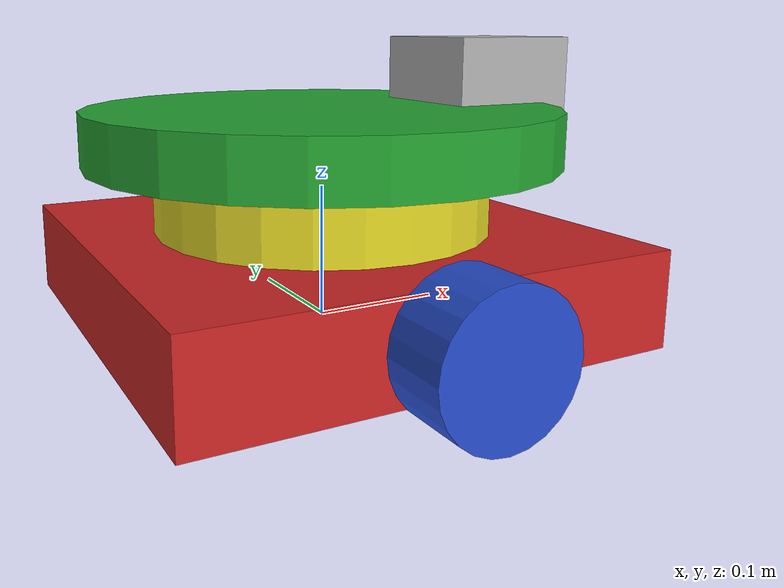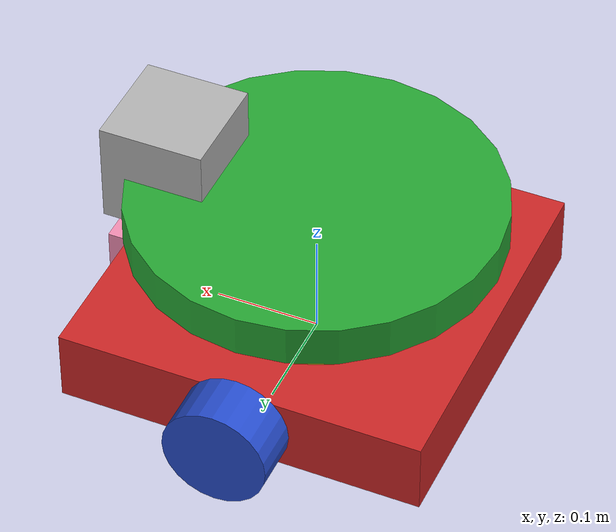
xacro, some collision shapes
<?xml version='1.0'?>

<robot name="my_robot" xmlns:xacro="http://www.ros.org/wiki/xacro">
<xacro:include filename="$(find my_robot)/urdf/my_robotGoChaseIt.gazebo" />

  <!-- Robot footprint -->

  <link name="robot_footprint"></link>

  <joint name="robot_footprint_joint" type="fixed">
    <origin xyz="0 0 0" rpy="0 0 0" />
    <parent link="robot_footprint"/>
    <child link="chassis" />
  </joint>

  <!-- Chassis -->

  <link name='chassis'>
    <pose>0 0 0.1 0 0 0</pose>

    <inertial>
      <mass value="15.0"/>
      <origin xyz="0.0 0.035 0" rpy=" 0 0 0"/>
      <inertia
          ixx="0.1" ixy="0" ixz="0"
          iyy="0.1" iyz="0"
          izz="0.1"
      />
    </inertial>

    <collision name='chassis_collision'>
      <origin xyz="0 0 0.035" rpy=" 0 0 0"/>
      <geometry>
        <box size=".35 .35 .07"/>
      </geometry>
    </collision>

    <visual name='chassis_visual'>
      <origin xyz="0 0 0.035" rpy=" 0 0 0"/>
      <geometry>
        <box size=".35 .35 .07"/>
      </geometry>
    </visual>

    <collision name='back_caster_collision'>
      <origin xyz="-0.125 0 0.0" rpy=" 0 0 0"/>
      <geometry>
        <sphere radius="0.015"/>
      </geometry>
    </collision>

    <visual name='back_caster_visual'>
      <origin xyz="-0.125 0 0.0" rpy=" 0 0 0"/>
      <geometry>
        <sphere radius="0.015"/>
      </geometry>
    </visual>

    <collision name='front_caster_collision'>
      <origin xyz="0.125 0 0.0" rpy=" 0 0 0"/>
      <geometry>
        <sphere radius="0.015"/>
      </geometry>
    </collision>

    <visual name='front_caster_visual'>
      <origin xyz="0.125 0 0.0" rpy=" 0 0 0"/>
      <geometry>
        <sphere radius="0.015"/>
      </geometry>
    </visual>

  </link>

  <!-- Column -->

  <link name='column'>
    <pose>0 0 0.1 0 0 0</pose>

    <inertial>
      <mass value="5.0"/>
      <origin xyz="0.0 0 0.095" rpy=" 0 0 0"/>
      <inertia
          ixx="0.1" ixy="0" ixz="0"
          iyy="0.1" iyz="0"
          izz="0.1"
      />
    </inertial>

    <collision name='column_collision'>
      <origin xyz="0 0 0.095" rpy=" 0 0 0"/>
      <geometry>
        <cylinder radius="0.125" length="0.05"/>
      </geometry>
    </collision>

    <visual name='column_visual'>
      <origin xyz="0 0 0.095" rpy=" 0 0 0"/>
      <geometry>
        <cylinder radius="0.125" length="0.05"/>
      </geometry>
    </visual>

  </link>

  <joint type="fixed" name="column_chasis_fixed">
    <origin xyz="0 0 0" rpy="0 0 0"/>
    <child link="column"/>
    <parent link="chassis"/>
  </joint>

  <!-- ServeTable -->

  <link name='servetable'>
    <pose>0 0 0.1 0 0 0</pose>

    <inertial>
      <mass value="5.0"/>
      <origin xyz="0.0 0 0.14" rpy=" 0 0 0"/>
      <inertia
          ixx="0.1" ixy="0" ixz="0"
          iyy="0.1" iyz="0"
          izz="0.1"
      />
    </inertial>

    <collision name='servetable_collision'>
      <origin xyz="0 0 0.14" rpy=" 0 0 0"/>
      <geometry>
        <cylinder radius="0.175" length="0.04"/>
      </geometry>
    </collision>

    <visual name='servetable_visual'>
      <origin xyz="0 0 0.14" rpy=" 0 0 0"/>
      <geometry>
        <cylinder radius="0.175" length="0.04"/>
      </geometry>
    </visual>

  </link>

  <joint type="fixed" name="servetable_chasis_fixed">
    <origin xyz="0 0 0" rpy="0 0 0"/>
    <child link="servetable"/>
    <parent link="chassis"/>
  </joint>

  <!--Left wheel-->

  <link name='left_wheel'>
    <pose>0 0 0.1 0 0 0</pose>

    <inertial>
      <mass value="5.0"/>
      <origin xyz="0.0 0 0" rpy=" 0 1.57 1.57"/>
      <inertia
          ixx="0.1" ixy="0" ixz="0"
          iyy="0.1" iyz="0"
          izz="0.1"
      />
    </inertial>

    <collision name='left_wheel_collision'>
      <origin xyz="0 0 0" rpy=" 0 1.57 1.57"/>
      <geometry>
        <cylinder radius="0.05" length="0.05"/>
      </geometry>
    </collision>

    <visual name='left_wheel_visual'>
      <origin xyz="0 0 0" rpy=" 0 1.57 1.57"/>
      <geometry>
        <cylinder radius="0.05" length="0.05"/>
      </geometry>
    </visual>

  </link>

  <joint type="continuous" name="left_wheel_hinge">
    <origin xyz="0 0.2 0.035" rpy="0 0 0"/>
    <child link="left_wheel"/>
    <parent link="chassis"/>
    <axis xyz="0 1 0" rpy="0 0 0"/>
    <limit effort="10000" velocity="1000"/>
    <dynamics damping="1.0" friction="1.0"/>
  </joint>

  <!--Right wheel-->

  <link name='right_wheel'>
    <pose>0 0 0.1 0 0 0</pose>

    <inertial>
      <mass value="5.0"/>
      <origin xyz="0.0 0 0" rpy=" 0 1.57 1.57"/>
      <inertia
          ixx="0.1" ixy="0" ixz="0"
          iyy="0.1" iyz="0"
          izz="0.1"
      />
    </inertial>

    <collision name='right_wheel_collision'>
      <origin xyz="0 0 0" rpy=" 0 1.57 1.57"/>
      <geometry>
        <cylinder radius="0.05" length="0.05"/>
      </geometry>
    </collision>

    <visual name='right_wheel_visual'>
      <origin xyz="0 0 0" rpy=" 0 1.57 1.57"/>
      <geometry>
        <cylinder radius="0.05" length="0.05"/>
      </geometry>
    </visual>

  </link>

  <joint type="continuous" name="right_wheel_hinge">
    <origin xyz="0 -0.2 0.035" rpy="0 0 0"/>
    <child link="right_wheel"/>
    <parent link="chassis"/>
    <axis xyz="0 1 0" rpy="0 0 0"/>
    <limit effort="10000" velocity="1000"/>
    <dynamics damping="1.0" friction="1.0"/>
  </joint>

  <!--Camera-->

  <link name='camera'>
    <pose>0 0 0.1 0 0 0</pose>

    <inertial>
      <mass value="0.1"/>
      <origin xyz="0.0 0 0" rpy=" 0 0 0"/>
      <inertia
          ixx="1e-06" ixy="0" ixz="0"
          iyy="1e-06" iyz="0"
          izz="1e-06"
      />
    </inertial>

    <collision name='camera_collision'>
      <origin xyz="0 0 0" rpy=" 0 0 0"/>
      <geometry>
        <box size="0.05 0.05 0.05" />
      </geometry>
    </collision>

    <visual name='camera_visual'>
      <origin xyz="0 0 0" rpy=" 0 0 0"/>
      <geometry>
        <box size="0.05 0.05 0.05" />
      </geometry>
    </visual>

  </link>

  <joint type="fixed" name="camera_joint">
    <origin xyz="0.175 0 0.035" rpy="0 0 0"/>
    <child link="camera"/>
    <parent link="chassis"/>
    <axis xyz="0 1 0"/>
  </joint>

 <!--Lidar-->

  <link name='hokuyo'>
    <pose>0 0 0.1 0 0 0</pose>

    <inertial>
      <mass value="1e-05"/>
      <origin xyz="0.0 0 0" rpy=" 0 0 0"/>
      <inertia
          ixx="1e-06" ixy="0" ixz="0"
          iyy="1e-06" iyz="0"
          izz="1e-06"
      />
    </inertial>

    <collision name='hokuyo_collision'>
      <origin xyz="0 0 0" rpy=" 0 0 0"/>
      <geometry>
        <box size="0.1 0.1 0.1" />
      </geometry>
    </collision>

    <visual name='hokuyo_visual'>
      <origin xyz="0 0 0" rpy=" 0 0 0"/>
      <geometry>
        <mesh filename = "package://my_robot/meshes/hokuyo.dae" />
      </geometry>
    </visual>

  </link>

  <joint type="fixed" name="hokuyo_joint">
    <origin xyz="0.14 0 0.16" rpy="0 0 0"/>
    <child link="hokuyo"/>
    <parent link="chassis"/>
    <axis xyz="0 1 0"/>
  </joint>

    <joint name="camera_optical_joint" type="fixed">
    <origin xyz="0 0 0" rpy="-1.5707 0 -1.5707"/>
    <parent link="camera"/>
    <child link="camera_link_optical"/>
  </joint>

  <link name="camera_link_optical">
  </link>

<!-- Colors -->

<gazebo reference="left_wheel">
    <material>Gazebo/Blue</material>
</gazebo>

<gazebo reference="right_wheel">
    <material>Gazebo/Blue</material>
</gazebo>

<gazebo reference="chassis">
    <material>Gazebo/Red</material>
</gazebo>

<gazebo reference="column">
    <material>Gazebo/Yellow</material>
</gazebo>

<gazebo reference="servetable">
    <material>Gazebo/Green</material>
</gazebo>

<gazebo reference="camera">
    <material>Gazebo/Pink</material>
</gazebo>

</robot>
